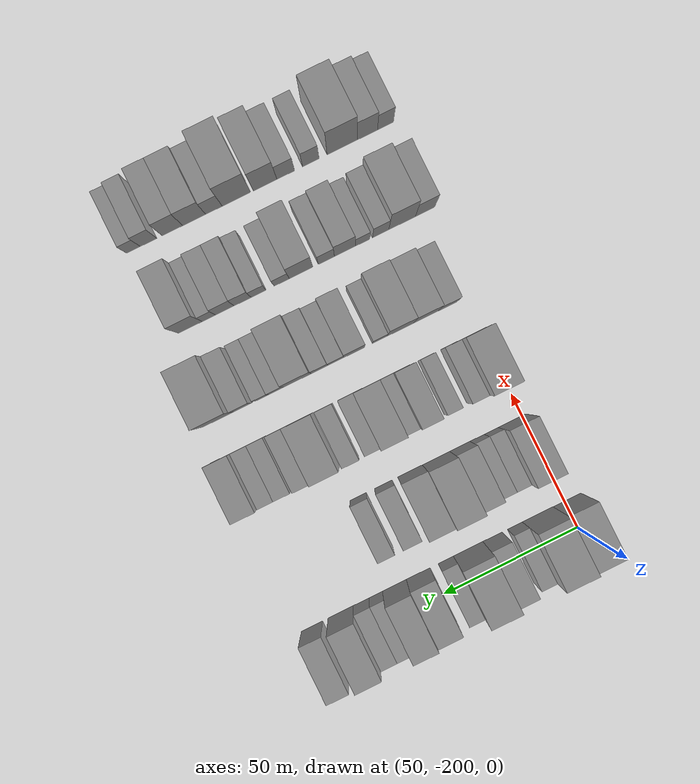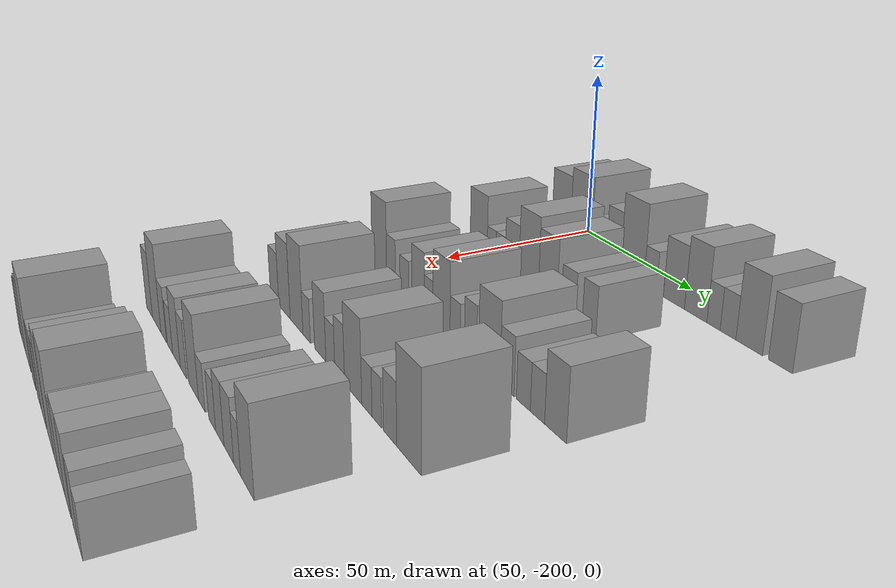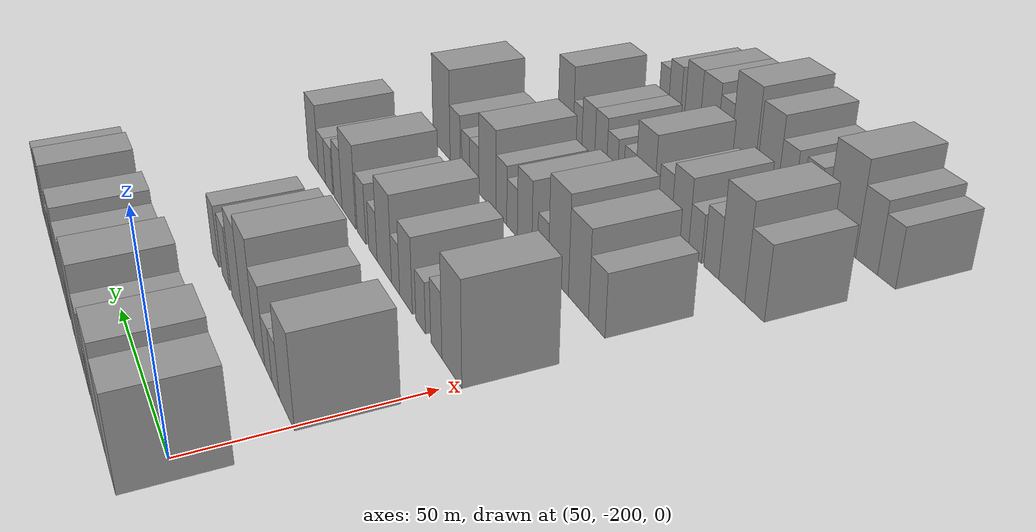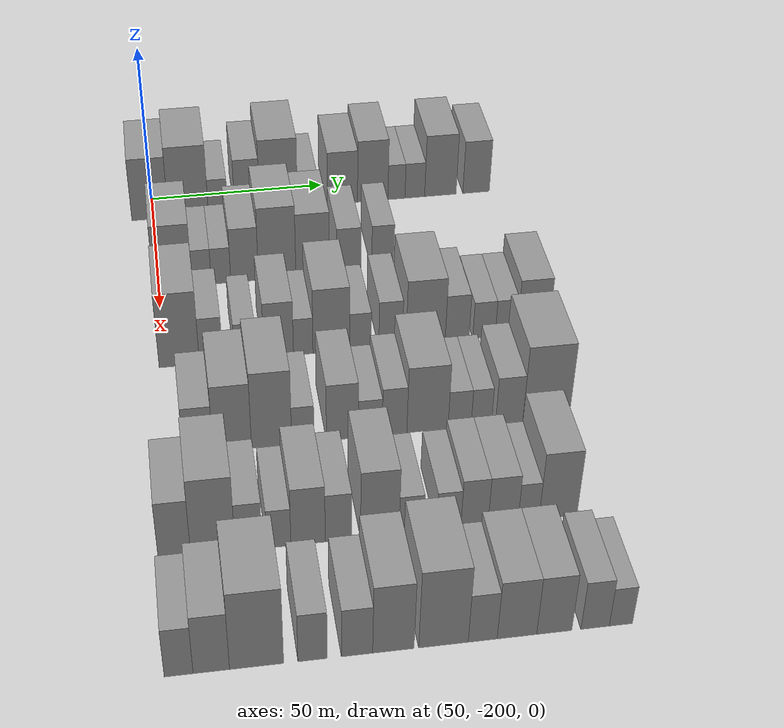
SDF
<sdf version="1.6">
 <world name="default">
  <model name="building_33">
   <static>1</static>
   <pose>50.0000 -200.8544 0 0.000000 0.000000 0.000000</pose>
   <link name="link">
    <pose>0 0 10.50 0 0 0</pose>
    <collision name="collision"><geometry><box><size>20.0000 10.4291 21.0000</size></box></geometry></collision>
    <visual name="visual">
     <cast_shadows>0</cast_shadows>
     <geometry><box><size>20.0000 10.4291 21.0000</size></box></geometry>
     <material>
      <script>
       <uri>model://grey_wall/materials/scripts</uri>
       <uri>model://grey_wall/materials/textures</uri>
       <name>vrc/grey_wall</name>
      </script>
     </material>
    </visual>
   </link>
  </model>
  <model name="building_34">
   <static>1</static>
   <pose>50.0000 -189.8872 0 0.000000 0.000000 0.000000</pose>
   <link name="link">
    <pose>0 0 12.00 0 0 0</pose>
    <collision name="collision"><geometry><box><size>20.0000 11.5054 24.0000</size></box></geometry></collision>
    <visual name="visual">
     <cast_shadows>0</cast_shadows>
     <geometry><box><size>20.0000 11.5054 24.0000</size></box></geometry>
     <material>
      <script>
       <uri>model://grey_wall/materials/scripts</uri>
       <uri>model://grey_wall/materials/textures</uri>
       <name>vrc/grey_wall</name>
      </script>
     </material>
    </visual>
   </link>
  </model>
  <model name="building_35">
   <static>1</static>
   <pose>50.0000 -181.3341 0 0.000000 0.000000 0.000000</pose>
   <link name="link">
    <pose>0 0 6.00 0 0 0</pose>
    <collision name="collision"><geometry><box><size>20.0000 5.6009 12.0000</size></box></geometry></collision>
    <visual name="visual">
     <cast_shadows>0</cast_shadows>
     <geometry><box><size>20.0000 5.6009 12.0000</size></box></geometry>
     <material>
      <script>
       <uri>model://grey_wall/materials/scripts</uri>
       <uri>model://grey_wall/materials/textures</uri>
       <name>vrc/grey_wall</name>
      </script>
     </material>
    </visual>
   </link>
  </model>
  <model name="building_36">
   <static>1</static>
   <pose>50.0000 -172.9242 0 0.000000 0.000000 0.000000</pose>
   <link name="link">
    <pose>0 0 9.00 0 0 0</pose>
    <collision name="collision"><geometry><box><size>20.0000 7.2188 18.0000</size></box></geometry></collision>
    <visual name="visual">
     <cast_shadows>0</cast_shadows>
     <geometry><box><size>20.0000 7.2188 18.0000</size></box></geometry>
     <material>
      <script>
       <uri>model://grey_wall/materials/scripts</uri>
       <uri>model://grey_wall/materials/textures</uri>
       <name>vrc/grey_wall</name>
      </script>
     </material>
    </visual>
   </link>
  </model>
  <model name="building_37">
   <static>1</static>
   <pose>50.0000 -163.7981 0 0.000000 0.000000 0.000000</pose>
   <link name="link">
    <pose>0 0 12.00 0 0 0</pose>
    <collision name="collision"><geometry><box><size>20.0000 11.0333 24.0000</size></box></geometry></collision>
    <visual name="visual">
     <cast_shadows>0</cast_shadows>
     <geometry><box><size>20.0000 11.0333 24.0000</size></box></geometry>
     <material>
      <script>
       <uri>model://grey_wall/materials/scripts</uri>
       <uri>model://grey_wall/materials/textures</uri>
       <name>vrc/grey_wall</name>
      </script>
     </material>
    </visual>
   </link>
  </model>
  <model name="building_38">
   <static>1</static>
   <pose>50.0000 -155.4298 0 0.000000 0.000000 0.000000</pose>
   <link name="link">
    <pose>0 0 6.00 0 0 0</pose>
    <collision name="collision"><geometry><box><size>20.0000 5.7034 12.0000</size></box></geometry></collision>
    <visual name="visual">
     <cast_shadows>0</cast_shadows>
     <geometry><box><size>20.0000 5.7034 12.0000</size></box></geometry>
     <material>
      <script>
       <uri>model://grey_wall/materials/scripts</uri>
       <uri>model://grey_wall/materials/textures</uri>
       <name>vrc/grey_wall</name>
      </script>
     </material>
    </visual>
   </link>
  </model>
  <model name="building_39">
   <static>1</static>
   <pose>50.0000 -145.1319 0 0.000000 0.000000 0.000000</pose>
   <link name="link">
    <pose>0 0 9.00 0 0 0</pose>
    <collision name="collision"><geometry><box><size>20.0000 8.8923 18.0000</size></box></geometry></collision>
    <visual name="visual">
     <cast_shadows>0</cast_shadows>
     <geometry><box><size>20.0000 8.8923 18.0000</size></box></geometry>
     <material>
      <script>
       <uri>model://grey_wall/materials/scripts</uri>
       <uri>model://grey_wall/materials/textures</uri>
       <name>vrc/grey_wall</name>
      </script>
     </material>
    </visual>
   </link>
  </model>
  <model name="building_40">
   <static>1</static>
   <pose>50.0000 -136.2018 0 0.000000 0.000000 0.000000</pose>
   <link name="link">
    <pose>0 0 10.50 0 0 0</pose>
    <collision name="collision"><geometry><box><size>20.0000 8.9679 21.0000</size></box></geometry></collision>
    <visual name="visual">
     <cast_shadows>0</cast_shadows>
     <geometry><box><size>20.0000 8.9679 21.0000</size></box></geometry>
     <material>
      <script>
       <uri>model://grey_wall/materials/scripts</uri>
       <uri>model://grey_wall/materials/textures</uri>
       <name>vrc/grey_wall</name>
      </script>
     </material>
    </visual>
   </link>
  </model>
  <model name="building_41">
   <static>1</static>
   <pose>50.0000 -129.1809 0 0.000000 0.000000 0.000000</pose>
   <link name="link">
    <pose>0 0 6.00 0 0 0</pose>
    <collision name="collision"><geometry><box><size>20.0000 5.0738 12.0000</size></box></geometry></collision>
    <visual name="visual">
     <cast_shadows>0</cast_shadows>
     <geometry><box><size>20.0000 5.0738 12.0000</size></box></geometry>
     <material>
      <script>
       <uri>model://grey_wall/materials/scripts</uri>
       <uri>model://grey_wall/materials/textures</uri>
       <name>vrc/grey_wall</name>
      </script>
     </material>
    </visual>
   </link>
  </model>
  <model name="building_42">
   <static>1</static>
   <pose>50.0000 -123.7242 0 0.000000 0.000000 0.000000</pose>
   <link name="link">
    <pose>0 0 6.00 0 0 0</pose>
    <collision name="collision"><geometry><box><size>20.0000 5.8395 12.0000</size></box></geometry></collision>
    <visual name="visual">
     <cast_shadows>0</cast_shadows>
     <geometry><box><size>20.0000 5.8395 12.0000</size></box></geometry>
     <material>
      <script>
       <uri>model://grey_wall/materials/scripts</uri>
       <uri>model://grey_wall/materials/textures</uri>
       <name>vrc/grey_wall</name>
      </script>
     </material>
    </visual>
   </link>
  </model>
  <model name="building_43">
   <static>1</static>
   <pose>50.0000 -116.1181 0 0.000000 0.000000 0.000000</pose>
   <link name="link">
    <pose>0 0 10.50 0 0 0</pose>
    <collision name="collision"><geometry><box><size>20.0000 9.3727 21.0000</size></box></geometry></collision>
    <visual name="visual">
     <cast_shadows>0</cast_shadows>
     <geometry><box><size>20.0000 9.3727 21.0000</size></box></geometry>
     <material>
      <script>
       <uri>model://grey_wall/materials/scripts</uri>
       <uri>model://grey_wall/materials/textures</uri>
       <name>vrc/grey_wall</name>
      </script>
     </material>
    </visual>
   </link>
  </model>
  <model name="building_44">
   <static>1</static>
   <pose>50.0000 -105.4651 0 0.000000 0.000000 0.000000</pose>
   <link name="link">
    <pose>0 0 9.00 0 0 0</pose>
    <collision name="collision"><geometry><box><size>20.0000 7.9334 18.0000</size></box></geometry></collision>
    <visual name="visual">
     <cast_shadows>0</cast_shadows>
     <geometry><box><size>20.0000 7.9334 18.0000</size></box></geometry>
     <material>
      <script>
       <uri>model://grey_wall/materials/scripts</uri>
       <uri>model://grey_wall/materials/textures</uri>
       <name>vrc/grey_wall</name>
      </script>
     </material>
    </visual>
   </link>
  </model>
  <model name="building_141">
   <static>1</static>
   <pose>82.0000 -196.0917 0 0.000000 0.000000 0.000000</pose>
   <link name="link">
    <pose>0 0 10.50 0 0 0</pose>
    <collision name="collision"><geometry><box><size>20.0000 10.3795 21.0000</size></box></geometry></collision>
    <visual name="visual">
     <cast_shadows>0</cast_shadows>
     <geometry><box><size>20.0000 10.3795 21.0000</size></box></geometry>
     <material>
      <script>
       <uri>model://grey_wall/materials/scripts</uri>
       <uri>model://grey_wall/materials/textures</uri>
       <name>vrc/grey_wall</name>
      </script>
     </material>
    </visual>
   </link>
  </model>
  <model name="building_142">
   <static>1</static>
   <pose>82.0000 -188.2773 0 0.000000 0.000000 0.000000</pose>
   <link name="link">
    <pose>0 0 6.00 0 0 0</pose>
    <collision name="collision"><geometry><box><size>20.0000 5.2494 12.0000</size></box></geometry></collision>
    <visual name="visual">
     <cast_shadows>0</cast_shadows>
     <geometry><box><size>20.0000 5.2494 12.0000</size></box></geometry>
     <material>
      <script>
       <uri>model://grey_wall/materials/scripts</uri>
       <uri>model://grey_wall/materials/textures</uri>
       <name>vrc/grey_wall</name>
      </script>
     </material>
    </visual>
   </link>
  </model>
  <model name="building_143">
   <static>1</static>
   <pose>82.0000 -182.9989 0 0.000000 0.000000 0.000000</pose>
   <link name="link">
    <pose>0 0 6.00 0 0 0</pose>
    <collision name="collision"><geometry><box><size>20.0000 5.3073 12.0000</size></box></geometry></collision>
    <visual name="visual">
     <cast_shadows>0</cast_shadows>
     <geometry><box><size>20.0000 5.3073 12.0000</size></box></geometry>
     <material>
      <script>
       <uri>model://grey_wall/materials/scripts</uri>
       <uri>model://grey_wall/materials/textures</uri>
       <name>vrc/grey_wall</name>
      </script>
     </material>
    </visual>
   </link>
  </model>
  <model name="building_144">
   <static>1</static>
   <pose>82.0000 -176.5511 0 0.000000 0.000000 0.000000</pose>
   <link name="link">
    <pose>0 0 9.00 0 0 0</pose>
    <collision name="collision"><geometry><box><size>20.0000 7.5883 18.0000</size></box></geometry></collision>
    <visual name="visual">
     <cast_shadows>0</cast_shadows>
     <geometry><box><size>20.0000 7.5883 18.0000</size></box></geometry>
     <material>
      <script>
       <uri>model://grey_wall/materials/scripts</uri>
       <uri>model://grey_wall/materials/textures</uri>
       <name>vrc/grey_wall</name>
      </script>
     </material>
    </visual>
   </link>
  </model>
  <model name="building_145">
   <static>1</static>
   <pose>82.0000 -167.6243 0 0.000000 0.000000 0.000000</pose>
   <link name="link">
    <pose>0 0 12.00 0 0 0</pose>
    <collision name="collision"><geometry><box><size>20.0000 10.2653 24.0000</size></box></geometry></collision>
    <visual name="visual">
     <cast_shadows>0</cast_shadows>
     <geometry><box><size>20.0000 10.2653 24.0000</size></box></geometry>
     <material>
      <script>
       <uri>model://grey_wall/materials/scripts</uri>
       <uri>model://grey_wall/materials/textures</uri>
       <name>vrc/grey_wall</name>
      </script>
     </material>
    </visual>
   </link>
  </model>
  <model name="building_146">
   <static>1</static>
   <pose>82.0000 -157.8451 0 0.000000 0.000000 0.000000</pose>
   <link name="link">
    <pose>0 0 10.50 0 0 0</pose>
    <collision name="collision"><geometry><box><size>20.0000 9.2931 21.0000</size></box></geometry></collision>
    <visual name="visual">
     <cast_shadows>0</cast_shadows>
     <geometry><box><size>20.0000 9.2931 21.0000</size></box></geometry>
     <material>
      <script>
       <uri>model://grey_wall/materials/scripts</uri>
       <uri>model://grey_wall/materials/textures</uri>
       <name>vrc/grey_wall</name>
      </script>
     </material>
    </visual>
   </link>
  </model>
  <model name="building_147">
   <static>1</static>
   <pose>82.0000 -147.8512 0 0.000000 0.000000 0.000000</pose>
   <link name="link">
    <pose>0 0 7.50 0 0 0</pose>
    <collision name="collision"><geometry><box><size>20.0000 6.6949 15.0000</size></box></geometry></collision>
    <visual name="visual">
     <cast_shadows>0</cast_shadows>
     <geometry><box><size>20.0000 6.6949 15.0000</size></box></geometry>
     <material>
      <script>
       <uri>model://grey_wall/materials/scripts</uri>
       <uri>model://grey_wall/materials/textures</uri>
       <name>vrc/grey_wall</name>
      </script>
     </material>
    </visual>
   </link>
  </model>
  <model name="building_148">
   <static>1</static>
   <pose>82.0000 -138.4165 0 0.000000 0.000000 0.000000</pose>
   <link name="link">
    <pose>0 0 7.50 0 0 0</pose>
    <collision name="collision"><geometry><box><size>20.0000 6.1744 15.0000</size></box></geometry></collision>
    <visual name="visual">
     <cast_shadows>0</cast_shadows>
     <geometry><box><size>20.0000 6.1744 15.0000</size></box></geometry>
     <material>
      <script>
       <uri>model://grey_wall/materials/scripts</uri>
       <uri>model://grey_wall/materials/textures</uri>
       <name>vrc/grey_wall</name>
      </script>
     </material>
    </visual>
   </link>
  </model>
  <model name="building_254">
   <static>1</static>
   <pose>114.0000 -196.2469 0 0.000000 0.000000 0.000000</pose>
   <link name="link">
    <pose>0 0 12.00 0 0 0</pose>
    <collision name="collision"><geometry><box><size>20.0000 10.2659 24.0000</size></box></geometry></collision>
    <visual name="visual">
     <cast_shadows>0</cast_shadows>
     <geometry><box><size>20.0000 10.2659 24.0000</size></box></geometry>
     <material>
      <script>
       <uri>model://grey_wall/materials/scripts</uri>
       <uri>model://grey_wall/materials/textures</uri>
       <name>vrc/grey_wall</name>
      </script>
     </material>
    </visual>
   </link>
  </model>
  <model name="building_255">
   <static>1</static>
   <pose>114.0000 -188.1120 0 0.000000 0.000000 0.000000</pose>
   <link name="link">
    <pose>0 0 7.50 0 0 0</pose>
    <collision name="collision"><geometry><box><size>20.0000 6.0039 15.0000</size></box></geometry></collision>
    <visual name="visual">
     <cast_shadows>0</cast_shadows>
     <geometry><box><size>20.0000 6.0039 15.0000</size></box></geometry>
     <material>
      <script>
       <uri>model://grey_wall/materials/scripts</uri>
       <uri>model://grey_wall/materials/textures</uri>
       <name>vrc/grey_wall</name>
      </script>
     </material>
    </visual>
   </link>
  </model>
  <model name="building_256">
   <static>1</static>
   <pose>114.0000 -179.3318 0 0.000000 0.000000 0.000000</pose>
   <link name="link">
    <pose>0 0 6.00 0 0 0</pose>
    <collision name="collision"><geometry><box><size>20.0000 5.5566 12.0000</size></box></geometry></collision>
    <visual name="visual">
     <cast_shadows>0</cast_shadows>
     <geometry><box><size>20.0000 5.5566 12.0000</size></box></geometry>
     <material>
      <script>
       <uri>model://grey_wall/materials/scripts</uri>
       <uri>model://grey_wall/materials/textures</uri>
       <name>vrc/grey_wall</name>
      </script>
     </material>
    </visual>
   </link>
  </model>
  <model name="building_257">
   <static>1</static>
   <pose>114.0000 -170.7039 0 0.000000 0.000000 0.000000</pose>
   <link name="link">
    <pose>0 0 9.00 0 0 0</pose>
    <collision name="collision"><geometry><box><size>20.0000 7.6991 18.0000</size></box></geometry></collision>
    <visual name="visual">
     <cast_shadows>0</cast_shadows>
     <geometry><box><size>20.0000 7.6991 18.0000</size></box></geometry>
     <material>
      <script>
       <uri>model://grey_wall/materials/scripts</uri>
       <uri>model://grey_wall/materials/textures</uri>
       <name>vrc/grey_wall</name>
      </script>
     </material>
    </visual>
   </link>
  </model>
  <model name="building_258">
   <static>1</static>
   <pose>114.0000 -164.3246 0 0.000000 0.000000 0.000000</pose>
   <link name="link">
    <pose>0 0 6.00 0 0 0</pose>
    <collision name="collision"><geometry><box><size>20.0000 5.0596 12.0000</size></box></geometry></collision>
    <visual name="visual">
     <cast_shadows>0</cast_shadows>
     <geometry><box><size>20.0000 5.0596 12.0000</size></box></geometry>
     <material>
      <script>
       <uri>model://grey_wall/materials/scripts</uri>
       <uri>model://grey_wall/materials/textures</uri>
       <name>vrc/grey_wall</name>
      </script>
     </material>
    </visual>
   </link>
  </model>
  <model name="building_259">
   <static>1</static>
   <pose>114.0000 -157.0309 0 0.000000 0.000000 0.000000</pose>
   <link name="link">
    <pose>0 0 10.50 0 0 0</pose>
    <collision name="collision"><geometry><box><size>20.0000 9.5276 21.0000</size></box></geometry></collision>
    <visual name="visual">
     <cast_shadows>0</cast_shadows>
     <geometry><box><size>20.0000 9.5276 21.0000</size></box></geometry>
     <material>
      <script>
       <uri>model://grey_wall/materials/scripts</uri>
       <uri>model://grey_wall/materials/textures</uri>
       <name>vrc/grey_wall</name>
      </script>
     </material>
    </visual>
   </link>
  </model>
  <model name="building_260">
   <static>1</static>
   <pose>114.0000 -149.4459 0 0.000000 0.000000 0.000000</pose>
   <link name="link">
    <pose>0 0 6.00 0 0 0</pose>
    <collision name="collision"><geometry><box><size>20.0000 5.6425 12.0000</size></box></geometry></collision>
    <visual name="visual">
     <cast_shadows>0</cast_shadows>
     <geometry><box><size>20.0000 5.6425 12.0000</size></box></geometry>
     <material>
      <script>
       <uri>model://grey_wall/materials/scripts</uri>
       <uri>model://grey_wall/materials/textures</uri>
       <name>vrc/grey_wall</name>
      </script>
     </material>
    </visual>
   </link>
  </model>
  <model name="building_261">
   <static>1</static>
   <pose>114.0000 -141.5200 0 0.000000 0.000000 0.000000</pose>
   <link name="link">
    <pose>0 0 7.50 0 0 0</pose>
    <collision name="collision"><geometry><box><size>20.0000 6.2092 15.0000</size></box></geometry></collision>
    <visual name="visual">
     <cast_shadows>0</cast_shadows>
     <geometry><box><size>20.0000 6.2092 15.0000</size></box></geometry>
     <material>
      <script>
       <uri>model://grey_wall/materials/scripts</uri>
       <uri>model://grey_wall/materials/textures</uri>
       <name>vrc/grey_wall</name>
      </script>
     </material>
    </visual>
   </link>
  </model>
  <model name="building_262">
   <static>1</static>
   <pose>114.0000 -132.2514 0 0.000000 0.000000 0.000000</pose>
   <link name="link">
    <pose>0 0 10.50 0 0 0</pose>
    <collision name="collision"><geometry><box><size>20.0000 10.3281 21.0000</size></box></geometry></collision>
    <visual name="visual">
     <cast_shadows>0</cast_shadows>
     <geometry><box><size>20.0000 10.3281 21.0000</size></box></geometry>
     <material>
      <script>
       <uri>model://grey_wall/materials/scripts</uri>
       <uri>model://grey_wall/materials/textures</uri>
       <name>vrc/grey_wall</name>
      </script>
     </material>
    </visual>
   </link>
  </model>
  <model name="building_263">
   <static>1</static>
   <pose>114.0000 -123.9300 0 0.000000 0.000000 0.000000</pose>
   <link name="link">
    <pose>0 0 7.50 0 0 0</pose>
    <collision name="collision"><geometry><box><size>20.0000 6.3147 15.0000</size></box></geometry></collision>
    <visual name="visual">
     <cast_shadows>0</cast_shadows>
     <geometry><box><size>20.0000 6.3147 15.0000</size></box></geometry>
     <material>
      <script>
       <uri>model://grey_wall/materials/scripts</uri>
       <uri>model://grey_wall/materials/textures</uri>
       <name>vrc/grey_wall</name>
      </script>
     </material>
    </visual>
   </link>
  </model>
  <model name="building_264">
   <static>1</static>
   <pose>114.0000 -116.7811 0 0.000000 0.000000 0.000000</pose>
   <link name="link">
    <pose>0 0 6.00 0 0 0</pose>
    <collision name="collision"><geometry><box><size>20.0000 5.9831 12.0000</size></box></geometry></collision>
    <visual name="visual">
     <cast_shadows>0</cast_shadows>
     <geometry><box><size>20.0000 5.9831 12.0000</size></box></geometry>
     <material>
      <script>
       <uri>model://grey_wall/materials/scripts</uri>
       <uri>model://grey_wall/materials/textures</uri>
       <name>vrc/grey_wall</name>
      </script>
     </material>
    </visual>
   </link>
  </model>
  <model name="building_265">
   <static>1</static>
   <pose>114.0000 -110.8699 0 0.000000 0.000000 0.000000</pose>
   <link name="link">
    <pose>0 0 6.00 0 0 0</pose>
    <collision name="collision"><geometry><box><size>20.0000 5.8393 12.0000</size></box></geometry></collision>
    <visual name="visual">
     <cast_shadows>0</cast_shadows>
     <geometry><box><size>20.0000 5.8393 12.0000</size></box></geometry>
     <material>
      <script>
       <uri>model://grey_wall/materials/scripts</uri>
       <uri>model://grey_wall/materials/textures</uri>
       <name>vrc/grey_wall</name>
      </script>
     </material>
    </visual>
   </link>
  </model>
  <model name="building_266">
   <static>1</static>
   <pose>114.0000 -103.6674 0 0.000000 0.000000 0.000000</pose>
   <link name="link">
    <pose>0 0 9.00 0 0 0</pose>
    <collision name="collision"><geometry><box><size>20.0000 8.5657 18.0000</size></box></geometry></collision>
    <visual name="visual">
     <cast_shadows>0</cast_shadows>
     <geometry><box><size>20.0000 8.5657 18.0000</size></box></geometry>
     <material>
      <script>
       <uri>model://grey_wall/materials/scripts</uri>
       <uri>model://grey_wall/materials/textures</uri>
       <name>vrc/grey_wall</name>
      </script>
     </material>
    </visual>
   </link>
  </model>
  <model name="building_373">
   <static>1</static>
   <pose>146.0000 -193.6481 0 0.000000 0.000000 0.000000</pose>
   <link name="link">
    <pose>0 0 7.50 0 0 0</pose>
    <collision name="collision"><geometry><box><size>20.0000 7.2025 15.0000</size></box></geometry></collision>
    <visual name="visual">
     <cast_shadows>0</cast_shadows>
     <geometry><box><size>20.0000 7.2025 15.0000</size></box></geometry>
     <material>
      <script>
       <uri>model://grey_wall/materials/scripts</uri>
       <uri>model://grey_wall/materials/textures</uri>
       <name>vrc/grey_wall</name>
      </script>
     </material>
    </visual>
   </link>
  </model>
  <model name="building_374">
   <static>1</static>
   <pose>146.0000 -185.3965 0 0.000000 0.000000 0.000000</pose>
   <link name="link">
    <pose>0 0 10.50 0 0 0</pose>
    <collision name="collision"><geometry><box><size>20.0000 9.3005 21.0000</size></box></geometry></collision>
    <visual name="visual">
     <cast_shadows>0</cast_shadows>
     <geometry><box><size>20.0000 9.3005 21.0000</size></box></geometry>
     <material>
      <script>
       <uri>model://grey_wall/materials/scripts</uri>
       <uri>model://grey_wall/materials/textures</uri>
       <name>vrc/grey_wall</name>
      </script>
     </material>
    </visual>
   </link>
  </model>
  <model name="building_375">
   <static>1</static>
   <pose>146.0000 -175.8782 0 0.000000 0.000000 0.000000</pose>
   <link name="link">
    <pose>0 0 12.00 0 0 0</pose>
    <collision name="collision"><geometry><box><size>20.0000 9.7362 24.0000</size></box></geometry></collision>
    <visual name="visual">
     <cast_shadows>0</cast_shadows>
     <geometry><box><size>20.0000 9.7362 24.0000</size></box></geometry>
     <material>
      <script>
       <uri>model://grey_wall/materials/scripts</uri>
       <uri>model://grey_wall/materials/textures</uri>
       <name>vrc/grey_wall</name>
      </script>
     </material>
    </visual>
   </link>
  </model>
  <model name="building_376">
   <static>1</static>
   <pose>146.0000 -168.2844 0 0.000000 0.000000 0.000000</pose>
   <link name="link">
    <pose>0 0 6.00 0 0 0</pose>
    <collision name="collision"><geometry><box><size>20.0000 5.4515 12.0000</size></box></geometry></collision>
    <visual name="visual">
     <cast_shadows>0</cast_shadows>
     <geometry><box><size>20.0000 5.4515 12.0000</size></box></geometry>
     <material>
      <script>
       <uri>model://grey_wall/materials/scripts</uri>
       <uri>model://grey_wall/materials/textures</uri>
       <name>vrc/grey_wall</name>
      </script>
     </material>
    </visual>
   </link>
  </model>
  <model name="building_377">
   <static>1</static>
   <pose>146.0000 -158.6741 0 0.000000 0.000000 0.000000</pose>
   <link name="link">
    <pose>0 0 9.00 0 0 0</pose>
    <collision name="collision"><geometry><box><size>20.0000 7.7691 18.0000</size></box></geometry></collision>
    <visual name="visual">
     <cast_shadows>0</cast_shadows>
     <geometry><box><size>20.0000 7.7691 18.0000</size></box></geometry>
     <material>
      <script>
       <uri>model://grey_wall/materials/scripts</uri>
       <uri>model://grey_wall/materials/textures</uri>
       <name>vrc/grey_wall</name>
      </script>
     </material>
    </visual>
   </link>
  </model>
  <model name="building_378">
   <static>1</static>
   <pose>146.0000 -151.8385 0 0.000000 0.000000 0.000000</pose>
   <link name="link">
    <pose>0 0 6.00 0 0 0</pose>
    <collision name="collision"><geometry><box><size>20.0000 5.9021 12.0000</size></box></geometry></collision>
    <visual name="visual">
     <cast_shadows>0</cast_shadows>
     <geometry><box><size>20.0000 5.9021 12.0000</size></box></geometry>
     <material>
      <script>
       <uri>model://grey_wall/materials/scripts</uri>
       <uri>model://grey_wall/materials/textures</uri>
       <name>vrc/grey_wall</name>
      </script>
     </material>
    </visual>
   </link>
  </model>
  <model name="building_379">
   <static>1</static>
   <pose>146.0000 -145.8356 0 0.000000 0.000000 0.000000</pose>
   <link name="link">
    <pose>0 0 7.50 0 0 0</pose>
    <collision name="collision"><geometry><box><size>20.0000 6.1038 15.0000</size></box></geometry></collision>
    <visual name="visual">
     <cast_shadows>0</cast_shadows>
     <geometry><box><size>20.0000 6.1038 15.0000</size></box></geometry>
     <material>
      <script>
       <uri>model://grey_wall/materials/scripts</uri>
       <uri>model://grey_wall/materials/textures</uri>
       <name>vrc/grey_wall</name>
      </script>
     </material>
    </visual>
   </link>
  </model>
  <model name="building_380">
   <static>1</static>
   <pose>146.0000 -137.6751 0 0.000000 0.000000 0.000000</pose>
   <link name="link">
    <pose>0 0 10.50 0 0 0</pose>
    <collision name="collision"><geometry><box><size>20.0000 10.2172 21.0000</size></box></geometry></collision>
    <visual name="visual">
     <cast_shadows>0</cast_shadows>
     <geometry><box><size>20.0000 10.2172 21.0000</size></box></geometry>
     <material>
      <script>
       <uri>model://grey_wall/materials/scripts</uri>
       <uri>model://grey_wall/materials/textures</uri>
       <name>vrc/grey_wall</name>
      </script>
     </material>
    </visual>
   </link>
  </model>
  <model name="building_381">
   <static>1</static>
   <pose>146.0000 -129.6942 0 0.000000 0.000000 0.000000</pose>
   <link name="link">
    <pose>0 0 6.00 0 0 0</pose>
    <collision name="collision"><geometry><box><size>20.0000 5.7446 12.0000</size></box></geometry></collision>
    <visual name="visual">
     <cast_shadows>0</cast_shadows>
     <geometry><box><size>20.0000 5.7446 12.0000</size></box></geometry>
     <material>
      <script>
       <uri>model://grey_wall/materials/scripts</uri>
       <uri>model://grey_wall/materials/textures</uri>
       <name>vrc/grey_wall</name>
      </script>
     </material>
    </visual>
   </link>
  </model>
  <model name="building_382">
   <static>1</static>
   <pose>146.0000 -124.2754 0 0.000000 0.000000 0.000000</pose>
   <link name="link">
    <pose>0 0 6.00 0 0 0</pose>
    <collision name="collision"><geometry><box><size>20.0000 5.0929 12.0000</size></box></geometry></collision>
    <visual name="visual">
     <cast_shadows>0</cast_shadows>
     <geometry><box><size>20.0000 5.0929 12.0000</size></box></geometry>
     <material>
      <script>
       <uri>model://grey_wall/materials/scripts</uri>
       <uri>model://grey_wall/materials/textures</uri>
       <name>vrc/grey_wall</name>
      </script>
     </material>
    </visual>
   </link>
  </model>
  <model name="building_383">
   <static>1</static>
   <pose>146.0000 -117.3075 0 0.000000 0.000000 0.000000</pose>
   <link name="link">
    <pose>0 0 7.50 0 0 0</pose>
    <collision name="collision"><geometry><box><size>20.0000 6.8428 15.0000</size></box></geometry></collision>
    <visual name="visual">
     <cast_shadows>0</cast_shadows>
     <geometry><box><size>20.0000 6.8428 15.0000</size></box></geometry>
     <material>
      <script>
       <uri>model://grey_wall/materials/scripts</uri>
       <uri>model://grey_wall/materials/textures</uri>
       <name>vrc/grey_wall</name>
      </script>
     </material>
    </visual>
   </link>
  </model>
  <model name="building_384">
   <static>1</static>
   <pose>146.0000 -108.0203 0 0.000000 0.000000 0.000000</pose>
   <link name="link">
    <pose>0 0 12.00 0 0 0</pose>
    <collision name="collision"><geometry><box><size>20.0000 11.7317 24.0000</size></box></geometry></collision>
    <visual name="visual">
     <cast_shadows>0</cast_shadows>
     <geometry><box><size>20.0000 11.7317 24.0000</size></box></geometry>
     <material>
      <script>
       <uri>model://grey_wall/materials/scripts</uri>
       <uri>model://grey_wall/materials/textures</uri>
       <name>vrc/grey_wall</name>
      </script>
     </material>
    </visual>
   </link>
  </model>
  <model name="building_499">
   <static>1</static>
   <pose>178.0000 -201.0829 0 0.000000 0.000000 0.000000</pose>
   <link name="link">
    <pose>0 0 9.00 0 0 0</pose>
    <collision name="collision"><geometry><box><size>20.0000 7.2531 18.0000</size></box></geometry></collision>
    <visual name="visual">
     <cast_shadows>0</cast_shadows>
     <geometry><box><size>20.0000 7.2531 18.0000</size></box></geometry>
     <material>
      <script>
       <uri>model://grey_wall/materials/scripts</uri>
       <uri>model://grey_wall/materials/textures</uri>
       <name>vrc/grey_wall</name>
      </script>
     </material>
    </visual>
   </link>
  </model>
  <model name="building_500">
   <static>1</static>
   <pose>178.0000 -192.4599 0 0.000000 0.000000 0.000000</pose>
   <link name="link">
    <pose>0 0 12.00 0 0 0</pose>
    <collision name="collision"><geometry><box><size>20.0000 9.9929 24.0000</size></box></geometry></collision>
    <visual name="visual">
     <cast_shadows>0</cast_shadows>
     <geometry><box><size>20.0000 9.9929 24.0000</size></box></geometry>
     <material>
      <script>
       <uri>model://grey_wall/materials/scripts</uri>
       <uri>model://grey_wall/materials/textures</uri>
       <name>vrc/grey_wall</name>
      </script>
     </material>
    </visual>
   </link>
  </model>
  <model name="building_501">
   <static>1</static>
   <pose>178.0000 -184.4135 0 0.000000 0.000000 0.000000</pose>
   <link name="link">
    <pose>0 0 7.50 0 0 0</pose>
    <collision name="collision"><geometry><box><size>20.0000 6.0998 15.0000</size></box></geometry></collision>
    <visual name="visual">
     <cast_shadows>0</cast_shadows>
     <geometry><box><size>20.0000 6.0998 15.0000</size></box></geometry>
     <material>
      <script>
       <uri>model://grey_wall/materials/scripts</uri>
       <uri>model://grey_wall/materials/textures</uri>
       <name>vrc/grey_wall</name>
      </script>
     </material>
    </visual>
   </link>
  </model>
  <model name="building_502">
   <static>1</static>
   <pose>178.0000 -177.6121 0 0.000000 0.000000 0.000000</pose>
   <link name="link">
    <pose>0 0 6.00 0 0 0</pose>
    <collision name="collision"><geometry><box><size>20.0000 5.5030 12.0000</size></box></geometry></collision>
    <visual name="visual">
     <cast_shadows>0</cast_shadows>
     <geometry><box><size>20.0000 5.5030 12.0000</size></box></geometry>
     <material>
      <script>
       <uri>model://grey_wall/materials/scripts</uri>
       <uri>model://grey_wall/materials/textures</uri>
       <name>vrc/grey_wall</name>
      </script>
     </material>
    </visual>
   </link>
  </model>
  <model name="building_503">
   <static>1</static>
   <pose>178.0000 -170.9659 0 0.000000 0.000000 0.000000</pose>
   <link name="link">
    <pose>0 0 9.00 0 0 0</pose>
    <collision name="collision"><geometry><box><size>20.0000 7.7895 18.0000</size></box></geometry></collision>
    <visual name="visual">
     <cast_shadows>0</cast_shadows>
     <geometry><box><size>20.0000 7.7895 18.0000</size></box></geometry>
     <material>
      <script>
       <uri>model://grey_wall/materials/scripts</uri>
       <uri>model://grey_wall/materials/textures</uri>
       <name>vrc/grey_wall</name>
      </script>
     </material>
    </visual>
   </link>
  </model>
  <model name="building_504">
   <static>1</static>
   <pose>178.0000 -164.0448 0 0.000000 0.000000 0.000000</pose>
   <link name="link">
    <pose>0 0 7.50 0 0 0</pose>
    <collision name="collision"><geometry><box><size>20.0000 6.0526 15.0000</size></box></geometry></collision>
    <visual name="visual">
     <cast_shadows>0</cast_shadows>
     <geometry><box><size>20.0000 6.0526 15.0000</size></box></geometry>
     <material>
      <script>
       <uri>model://grey_wall/materials/scripts</uri>
       <uri>model://grey_wall/materials/textures</uri>
       <name>vrc/grey_wall</name>
      </script>
     </material>
    </visual>
   </link>
  </model>
  <model name="building_505">
   <static>1</static>
   <pose>178.0000 -154.5836 0 0.000000 0.000000 0.000000</pose>
   <link name="link">
    <pose>0 0 10.50 0 0 0</pose>
    <collision name="collision"><geometry><box><size>20.0000 8.8698 21.0000</size></box></geometry></collision>
    <visual name="visual">
     <cast_shadows>0</cast_shadows>
     <geometry><box><size>20.0000 8.8698 21.0000</size></box></geometry>
     <material>
      <script>
       <uri>model://grey_wall/materials/scripts</uri>
       <uri>model://grey_wall/materials/textures</uri>
       <name>vrc/grey_wall</name>
      </script>
     </material>
    </visual>
   </link>
  </model>
  <model name="building_506">
   <static>1</static>
   <pose>178.0000 -147.3077 0 0.000000 0.000000 0.000000</pose>
   <link name="link">
    <pose>0 0 6.00 0 0 0</pose>
    <collision name="collision"><geometry><box><size>20.0000 5.6819 12.0000</size></box></geometry></collision>
    <visual name="visual">
     <cast_shadows>0</cast_shadows>
     <geometry><box><size>20.0000 5.6819 12.0000</size></box></geometry>
     <material>
      <script>
       <uri>model://grey_wall/materials/scripts</uri>
       <uri>model://grey_wall/materials/textures</uri>
       <name>vrc/grey_wall</name>
      </script>
     </material>
    </visual>
   </link>
  </model>
  <model name="building_507">
   <static>1</static>
   <pose>178.0000 -138.6546 0 0.000000 0.000000 0.000000</pose>
   <link name="link">
    <pose>0 0 6.00 0 0 0</pose>
    <collision name="collision"><geometry><box><size>20.0000 5.6244 12.0000</size></box></geometry></collision>
    <visual name="visual">
     <cast_shadows>0</cast_shadows>
     <geometry><box><size>20.0000 5.6244 12.0000</size></box></geometry>
     <material>
      <script>
       <uri>model://grey_wall/materials/scripts</uri>
       <uri>model://grey_wall/materials/textures</uri>
       <name>vrc/grey_wall</name>
      </script>
     </material>
    </visual>
   </link>
  </model>
  <model name="building_508">
   <static>1</static>
   <pose>178.0000 -132.6649 0 0.000000 0.000000 0.000000</pose>
   <link name="link">
    <pose>0 0 7.50 0 0 0</pose>
    <collision name="collision"><geometry><box><size>20.0000 6.3550 15.0000</size></box></geometry></collision>
    <visual name="visual">
     <cast_shadows>0</cast_shadows>
     <geometry><box><size>20.0000 6.3550 15.0000</size></box></geometry>
     <material>
      <script>
       <uri>model://grey_wall/materials/scripts</uri>
       <uri>model://grey_wall/materials/textures</uri>
       <name>vrc/grey_wall</name>
      </script>
     </material>
    </visual>
   </link>
  </model>
  <model name="building_509">
   <static>1</static>
   <pose>178.0000 -125.9829 0 0.000000 0.000000 0.000000</pose>
   <link name="link">
    <pose>0 0 7.50 0 0 0</pose>
    <collision name="collision"><geometry><box><size>20.0000 7.0088 15.0000</size></box></geometry></collision>
    <visual name="visual">
     <cast_shadows>0</cast_shadows>
     <geometry><box><size>20.0000 7.0088 15.0000</size></box></geometry>
     <material>
      <script>
       <uri>model://grey_wall/materials/scripts</uri>
       <uri>model://grey_wall/materials/textures</uri>
       <name>vrc/grey_wall</name>
      </script>
     </material>
    </visual>
   </link>
  </model>
  <model name="building_510">
   <static>1</static>
   <pose>178.0000 -120.0160 0 0.000000 0.000000 0.000000</pose>
   <link name="link">
    <pose>0 0 6.00 0 0 0</pose>
    <collision name="collision"><geometry><box><size>20.0000 4.9250 12.0000</size></box></geometry></collision>
    <visual name="visual">
     <cast_shadows>0</cast_shadows>
     <geometry><box><size>20.0000 4.9250 12.0000</size></box></geometry>
     <material>
      <script>
       <uri>model://grey_wall/materials/scripts</uri>
       <uri>model://grey_wall/materials/textures</uri>
       <name>vrc/grey_wall</name>
      </script>
     </material>
    </visual>
   </link>
  </model>
  <model name="building_511">
   <static>1</static>
   <pose>178.0000 -113.0868 0 0.000000 0.000000 0.000000</pose>
   <link name="link">
    <pose>0 0 10.50 0 0 0</pose>
    <collision name="collision"><geometry><box><size>20.0000 8.9333 21.0000</size></box></geometry></collision>
    <visual name="visual">
     <cast_shadows>0</cast_shadows>
     <geometry><box><size>20.0000 8.9333 21.0000</size></box></geometry>
     <material>
      <script>
       <uri>model://grey_wall/materials/scripts</uri>
       <uri>model://grey_wall/materials/textures</uri>
       <name>vrc/grey_wall</name>
      </script>
     </material>
    </visual>
   </link>
  </model>
  <model name="building_622">
   <static>1</static>
   <pose>210.0000 -202.0232 0 0.000000 0.000000 0.000000</pose>
   <link name="link">
    <pose>0 0 7.50 0 0 0</pose>
    <collision name="collision"><geometry><box><size>20.0000 6.0024 15.0000</size></box></geometry></collision>
    <visual name="visual">
     <cast_shadows>0</cast_shadows>
     <geometry><box><size>20.0000 6.0024 15.0000</size></box></geometry>
     <material>
      <script>
       <uri>model://grey_wall/materials/scripts</uri>
       <uri>model://grey_wall/materials/textures</uri>
       <name>vrc/grey_wall</name>
      </script>
     </material>
    </visual>
   </link>
  </model>
  <model name="building_623">
   <static>1</static>
   <pose>210.0000 -195.2301 0 0.000000 0.000000 0.000000</pose>
   <link name="link">
    <pose>0 0 9.00 0 0 0</pose>
    <collision name="collision"><geometry><box><size>20.0000 7.5837 18.0000</size></box></geometry></collision>
    <visual name="visual">
     <cast_shadows>0</cast_shadows>
     <geometry><box><size>20.0000 7.5837 18.0000</size></box></geometry>
     <material>
      <script>
       <uri>model://grey_wall/materials/scripts</uri>
       <uri>model://grey_wall/materials/textures</uri>
       <name>vrc/grey_wall</name>
      </script>
     </material>
    </visual>
   </link>
  </model>
  <model name="building_624">
   <static>1</static>
   <pose>210.0000 -185.7531 0 0.000000 0.000000 0.000000</pose>
   <link name="link">
    <pose>0 0 12.00 0 0 0</pose>
    <collision name="collision"><geometry><box><size>20.0000 11.3703 24.0000</size></box></geometry></collision>
    <visual name="visual">
     <cast_shadows>0</cast_shadows>
     <geometry><box><size>20.0000 11.3703 24.0000</size></box></geometry>
     <material>
      <script>
       <uri>model://grey_wall/materials/scripts</uri>
       <uri>model://grey_wall/materials/textures</uri>
       <name>vrc/grey_wall</name>
      </script>
     </material>
    </visual>
   </link>
  </model>
  <model name="building_625">
   <static>1</static>
   <pose>210.0000 -173.9718 0 0.000000 0.000000 0.000000</pose>
   <link name="link">
    <pose>0 0 7.50 0 0 0</pose>
    <collision name="collision"><geometry><box><size>20.0000 6.1923 15.0000</size></box></geometry></collision>
    <visual name="visual">
     <cast_shadows>0</cast_shadows>
     <geometry><box><size>20.0000 6.1923 15.0000</size></box></geometry>
     <material>
      <script>
       <uri>model://grey_wall/materials/scripts</uri>
       <uri>model://grey_wall/materials/textures</uri>
       <name>vrc/grey_wall</name>
      </script>
     </material>
    </visual>
   </link>
  </model>
  <model name="building_626">
   <static>1</static>
   <pose>210.0000 -164.5462 0 0.000000 0.000000 0.000000</pose>
   <link name="link">
    <pose>0 0 7.50 0 0 0</pose>
    <collision name="collision"><geometry><box><size>20.0000 6.6590 15.0000</size></box></geometry></collision>
    <visual name="visual">
     <cast_shadows>0</cast_shadows>
     <geometry><box><size>20.0000 6.6590 15.0000</size></box></geometry>
     <material>
      <script>
       <uri>model://grey_wall/materials/scripts</uri>
       <uri>model://grey_wall/materials/textures</uri>
       <name>vrc/grey_wall</name>
      </script>
     </material>
    </visual>
   </link>
  </model>
  <model name="building_627">
   <static>1</static>
   <pose>210.0000 -156.7904 0 0.000000 0.000000 0.000000</pose>
   <link name="link">
    <pose>0 0 10.50 0 0 0</pose>
    <collision name="collision"><geometry><box><size>20.0000 8.8526 21.0000</size></box></geometry></collision>
    <visual name="visual">
     <cast_shadows>0</cast_shadows>
     <geometry><box><size>20.0000 8.8526 21.0000</size></box></geometry>
     <material>
      <script>
       <uri>model://grey_wall/materials/scripts</uri>
       <uri>model://grey_wall/materials/textures</uri>
       <name>vrc/grey_wall</name>
      </script>
     </material>
    </visual>
   </link>
  </model>
  <model name="building_628">
   <static>1</static>
   <pose>210.0000 -146.0246 0 0.000000 0.000000 0.000000</pose>
   <link name="link">
    <pose>0 0 12.00 0 0 0</pose>
    <collision name="collision"><geometry><box><size>20.0000 10.6788 24.0000</size></box></geometry></collision>
    <visual name="visual">
     <cast_shadows>0</cast_shadows>
     <geometry><box><size>20.0000 10.6788 24.0000</size></box></geometry>
     <material>
      <script>
       <uri>model://grey_wall/materials/scripts</uri>
       <uri>model://grey_wall/materials/textures</uri>
       <name>vrc/grey_wall</name>
      </script>
     </material>
    </visual>
   </link>
  </model>
  <model name="building_629">
   <static>1</static>
   <pose>210.0000 -137.5486 0 0.000000 0.000000 0.000000</pose>
   <link name="link">
    <pose>0 0 7.50 0 0 0</pose>
    <collision name="collision"><geometry><box><size>20.0000 6.2732 15.0000</size></box></geometry></collision>
    <visual name="visual">
     <cast_shadows>0</cast_shadows>
     <geometry><box><size>20.0000 6.2732 15.0000</size></box></geometry>
     <material>
      <script>
       <uri>model://grey_wall/materials/scripts</uri>
       <uri>model://grey_wall/materials/textures</uri>
       <name>vrc/grey_wall</name>
      </script>
     </material>
    </visual>
   </link>
  </model>
  <model name="building_630">
   <static>1</static>
   <pose>210.0000 -130.1111 0 0.000000 0.000000 0.000000</pose>
   <link name="link">
    <pose>0 0 9.00 0 0 0</pose>
    <collision name="collision"><geometry><box><size>20.0000 8.6018 18.0000</size></box></geometry></collision>
    <visual name="visual">
     <cast_shadows>0</cast_shadows>
     <geometry><box><size>20.0000 8.6018 18.0000</size></box></geometry>
     <material>
      <script>
       <uri>model://grey_wall/materials/scripts</uri>
       <uri>model://grey_wall/materials/textures</uri>
       <name>vrc/grey_wall</name>
      </script>
     </material>
    </visual>
   </link>
  </model>
  <model name="building_631">
   <static>1</static>
   <pose>210.0000 -121.9644 0 0.000000 0.000000 0.000000</pose>
   <link name="link">
    <pose>0 0 9.00 0 0 0</pose>
    <collision name="collision"><geometry><box><size>20.0000 7.6916 18.0000</size></box></geometry></collision>
    <visual name="visual">
     <cast_shadows>0</cast_shadows>
     <geometry><box><size>20.0000 7.6916 18.0000</size></box></geometry>
     <material>
      <script>
       <uri>model://grey_wall/materials/scripts</uri>
       <uri>model://grey_wall/materials/textures</uri>
       <name>vrc/grey_wall</name>
      </script>
     </material>
    </visual>
   </link>
  </model>
  <model name="building_632">
   <static>1</static>
   <pose>210.0000 -112.9991 0 0.000000 0.000000 0.000000</pose>
   <link name="link">
    <pose>0 0 7.50 0 0 0</pose>
    <collision name="collision"><geometry><box><size>20.0000 6.2390 15.0000</size></box></geometry></collision>
    <visual name="visual">
     <cast_shadows>0</cast_shadows>
     <geometry><box><size>20.0000 6.2390 15.0000</size></box></geometry>
     <material>
      <script>
       <uri>model://grey_wall/materials/scripts</uri>
       <uri>model://grey_wall/materials/textures</uri>
       <name>vrc/grey_wall</name>
      </script>
     </material>
    </visual>
   </link>
  </model>
  <model name="building_633">
   <static>1</static>
   <pose>210.0000 -107.3138 0 0.000000 0.000000 0.000000</pose>
   <link name="link">
    <pose>0 0 6.00 0 0 0</pose>
    <collision name="collision"><geometry><box><size>20.0000 5.1316 12.0000</size></box></geometry></collision>
    <visual name="visual">
     <cast_shadows>0</cast_shadows>
     <geometry><box><size>20.0000 5.1316 12.0000</size></box></geometry>
     <material>
      <script>
       <uri>model://grey_wall/materials/scripts</uri>
       <uri>model://grey_wall/materials/textures</uri>
       <name>vrc/grey_wall</name>
      </script>
     </material>
    </visual>
   </link>
  </model>
 </world>
</sdf>
